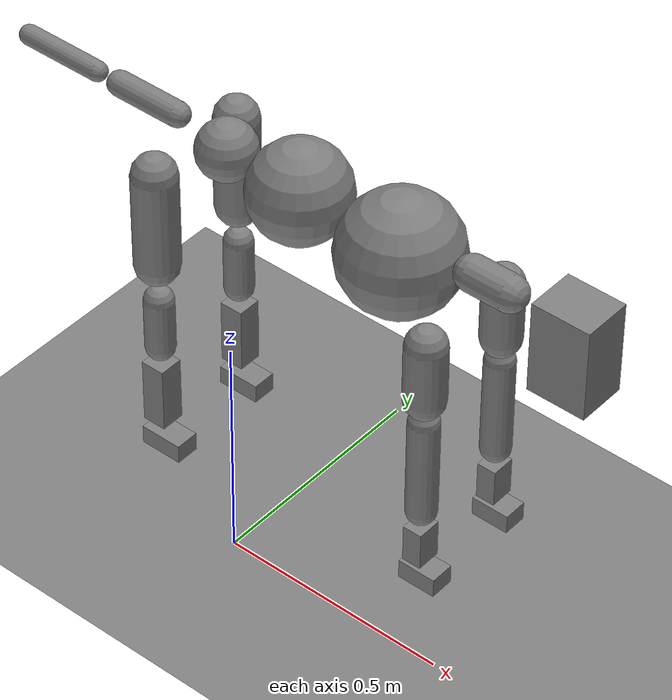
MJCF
<mujoco model="dog">
  <statistic extent="2" center="0 0 1"/>

  <option timestep="0.00555"/>

  <default>
    <motor ctrlrange="-1 1" ctrllimited="true"/>
    <default class="body">
      <geom type="capsule" condim="1" friction="1.0 0.05 0.05" solimp=".9 .99 .003" solref=".015 1"/>
      <joint type="hinge" damping="0.1" stiffness="5" armature=".007" limited="true" solimplimit="0 .99 .01"/>
      <site size=".04" group="3"/>
      <default class="force-torque">
        <site type="box" size=".01 .01 .02" rgba="1 0 0 1" />
      </default>
      <default class="touch">
        <site type="capsule" rgba="0 0 1 .3"/>
      </default>
    </default>
  </default>

  <worldbody>
    <geom name="floor" type="plane" conaffinity="1" size="100 100 .2" />
    <body name="pelvis" pos="0 0 1" childclass="body">
      <freejoint name="root"/>
      <site name="root" class="force-torque"/>
      <geom name="pelvis" type="sphere" pos="0 0 -0.02" size=".06" mass="3"/>
      <site name="pelvis" class="touch" type="sphere" pos="0 0 -0.02" size="0.061"/>

      <body name="waist" pos="0 0 0">
        <joint name="spine0_x" pos="0 0 0" axis="1 0 0" range="-60 60" stiffness="1000" damping="100" armature=".02"/>
        <joint name="spine0_y" pos="0 0 0" axis="0 1 0" range="-60 60" stiffness="1000" damping="100" armature=".02"/>
        <joint name="spine0_z" pos="0 0 0" axis="0 0 1" range="-30 30" stiffness="1000" damping="100" armature=".02"/>
        <geom name="waist" type="sphere" pos="0.17 0 -0.025" size="0.1" mass="5"/>
        <site name="waist" class="touch" type="sphere" pos="0.17 0 -0.025" size="0.11"/>

        <body name="torso" pos="0.237500 0 0">
          <light name="top" pos="0 0 2" mode="trackcom"/>
          <camera name="back" pos="-3 0 1" xyaxes="0 -1 0 1 0 2" mode="trackcom"/>
          <camera name="side" pos="0 -3 1" xyaxes="1 0 0 0 1 2" mode="trackcom"/>
          <joint name="spine1_x" pos="0 0 0" axis="1 0 0" range="-60 60" stiffness="1000" damping="100" armature=".02"/>
          <joint name="spine1_y" pos="0 0 0" axis="0 1 0" range="-60 90" stiffness="1000" damping="100" armature=".02"/>
          <joint name="spine1_z" pos="0 0 0" axis="0 0 1" range="-50 50" stiffness="1000" damping="100" armature=".02"/>
          <geom name="torso" type="sphere" pos="0.16 0 -0.04" size="0.12" mass="6"/>
          <site name="spine1" class="touch" type="sphere" pos="0.17 0 -0.04" size="0.121"/>

          <body name="neck" pos="0.28135 0 0">
            <joint name="neck_x" pos="0 0 0" axis="1 0 0" range="-60 60" stiffness="100" damping="10" armature=".01"/>
            <joint name="neck_y" pos="0 0 0" axis="0 1 0" range="-90 90" stiffness="100" damping="10" armature=".01"/>
            <joint name="neck_z" pos="0 0 0" axis="0 0 1" range="-50 50" stiffness="100" damping="10" armature=".01"/>
            <geom name="neck" type="capsule" pos="0.075 0 0" euler="0 -90 0" size="0.035 0.04" mass="1"/>
            <site name="neck" class="touch" type="sphere" pos="0.12 0 0" size="0.111"/>

            <body name="head" pos="0.175 0 0">
              <joint name="head_x" pos="0 0 0" axis="1 0 0" range="-60 60" stiffness="100" damping="10" armature=".01"/>
              <joint name="head_y" pos="0 0 0" axis="0 1 0" range="-60 60" stiffness="100" damping="10" armature=".01"/>
              <joint name="head_z" pos="0 0 0" axis="0 0 1" range="-50 50" stiffness="100" damping="10" armature=".01"/>
              <geom name="head" type="box" pos="0.08 0 -0.04" size="0.06 0.05 0.095" mass="1.5"/>
              <site name="head" class="touch" type="box" pos="0.08 0 -0.04" size="0.061 0.051 0.096"/>
              <camera name="egocentric" pos=".103 0 0" euler="0 0 -90"/>
            </body>
          </body>

          <body name="left_shoulder" pos="0.304074 -0.106071 -0.109983">
            <joint name="left_shoulder_x" pos="0 0 0" axis="1 0 0" range="-60 60" stiffness="500" damping="50" armature=".02"/>
            <joint name="left_shoulder_y" pos="0 0 0" axis="0 1 0" range="-60 90" stiffness="500" damping="50" armature=".02"/>
            <joint name="left_shoulder_z" pos="0 0 0" axis="0 0 1" range="-50 50" stiffness="500" damping="50" armature=".02"/>
            <geom name="left_shoulder" type="capsule" pos="0 0 -0.05" size="0.04 0.06" mass="1.5"/>
            <site name="left_shoulder" class="touch" type="capsule" pos="0 0 -0.05" size="0.041 0.061"/>

            <body name="left_forearm" pos="0 0 -0.19">
              <joint name="left_forearm" pos="0 0 0" axis="0 1 0" range="-160 0" stiffness="400" damping="40" armature=".02"/>
              <geom name="left_forearm" type="capsule" pos="0 0 -0.08" size="0.03 0.105" mass="1"/>
              <site name="left_forearm" class="touch" type="capsule" pos="0 0 -0.08" size="0.031 0.106"/>

              <body name="left_hand" pos="0 0 -0.222500">
                <joint name="left_hand_x" pos="0 0 0" axis="1 0 0" range="-60 60" stiffness="300" damping="30" armature=".01"/>
                <joint name="left_hand_y" pos="0 0 0" axis="0 1 0" range="-60 60" stiffness="300" damping="30" armature=".01"/>
                <joint name="left_hand_z" pos="0 0 0" axis="0 0 1" range="-60 60" stiffness="300" damping="30" armature=".01"/>
                <geom name="left_hand" type="box" pos="0 0 -0.04" size="0.02 0.025 0.04" mass="0.5"/>
                <site name="left_hand" class="touch" type="box" pos="0 0 -0.04" size="0.021 0.026 0.041"/>

                <body name="left_finger" pos="0 0 -0.09">
                  <joint name="left_finger_x" pos="0 0 0" axis="1 0 0" range="-60 60" stiffness="200" damping="20" armature=".01"/>
                  <joint name="left_finger_y" pos="0 0 0" axis="0 1 0" range="-60 60" stiffness="200" damping="20" armature=".01"/>
                  <joint name="left_finger_z" pos="0 0 0" axis="0 0 1" range="-60 60" stiffness="200" damping="20" armature=".01"/>
                  <geom name="left_finger" type="box" pos="0.012 0 -0.02" size="0.04 0.025 0.02" mass="0.5"/>
                  <site name="left_finger" class="touch" type="box" pos="0.012 0 -0.02" size="0.041 0.026 0.021"/>
                </body>
              </body>
            </body>
          </body>

          <body name="right_shoulder" pos="0.304074 0.106071 -0.109983">
            <joint name="right_shoulder_x" pos="0 0 0" axis="1 0 0" range="-60 60" stiffness="600" damping="60" armature=".02"/>
            <joint name="right_shoulder_y" pos="0 0 0" axis="0 1 0" range="-60 90" stiffness="600" damping="60" armature=".02"/>
            <joint name="right_shoulder_z" pos="0 0 0" axis="0 0 1" range="-50 50" stiffness="600" damping="60" armature=".02"/>
            <geom name="right_shoulder" type="capsule" pos="0 0 -0.05" size="0.04 0.06" mass="1.5"/>
            <site name="right_shoulder" class="touch" type="capsule" pos="0 0 -0.05" size="0.041 0.061"/>

            <body name="right_forearm" pos="0 0 -0.19">
              <joint name="right_forearm" pos="0 0 0" axis="0 1 0" range="-180 0" stiffness="400" damping="40" armature=".02"/>
              <geom name="right_forearm" type="capsule" pos="0 0 -0.08" size="0.03 0.105" mass="1"/>
              <site name="right_forearm" class="touch" type="capsule" pos="0 0 -0.08" size="0.031 0.106"/>

              <body name="right_hand" pos="0 0 -0.222500">
                <joint name="right_hand_x" pos="0 0 0" axis="1 0 0" range="-60 60" stiffness="300" damping="30" armature=".02"/>
                <joint name="right_hand_y" pos="0 0 0" axis="0 1 0" range="-60 60" stiffness="300" damping="30" armature=".02"/>
                <joint name="right_hand_z" pos="0 0 0" axis="0 0 1" range="-60 60" stiffness="300" damping="30" armature=".02"/>
                <geom name="right_hand" type="box" pos="0 0 -0.04" size="0.02 0.025 0.04" mass="0.5"/>
                <site name="right_hand" class="touch" type="box" pos="0 0 -0.04" size="0.021 0.026 0.041"/>

                <body name="right_finger" pos="0 0 -0.09">
                  <joint name="right_finger_x" pos="0 0 0" axis="1 0 0" range="-60 60" stiffness="200" damping="20" armature=".01"/>
                  <joint name="right_finger_y" pos="0 0 0" axis="0 1 0" range="-60 60" stiffness="200" damping="20" armature=".01"/>
                  <joint name="right_finger_z" pos="0 0 0" axis="0 0 1" range="-60 60" stiffness="200" damping="20" armature=".01"/>
                  <geom name="right_finger" type="box" pos="0.012 0 -0.02" size="0.04 0.025 0.02" mass="0.5"/>
                  <site name="right_finger" class="touch" type="box" pos="0.012 0 -0.02" size="0.041 0.026 0.021"/>
                </body>
              </body>
            </body>
          </body>
        </body>
      </body>

      <body name="left_upper_leg" pos="-0.074803 -0.109860 -0.095825">
        <joint name="left_upper_leg_x" pos="0 0 0" axis="1 0 0" range="-120 60" stiffness="700" damping="70" armature=".02"/>
        <joint name="left_upper_leg_y" pos="0 0 0" axis="0 1 0" range="-90 90" stiffness="700" damping="70" armature=".02"/>
        <joint name="left_upper_leg_z" pos="0 0 0" axis="0 0 1" range="-50 50" stiffness="700" damping="70" armature=".02"/>
        <geom name="left_upper_leg" type="capsule" pos="0 0 -0.055" size="0.045 0.1" mass="1.5"/>
        <site name="left_upper_leg" class="touch" type="capsule" pos="0 0 -0.055" size="0.046 0.101"/>

        <body name="left_leg" pos="0 0 -0.2">
          <joint name="left_leg" pos="0 0 0" axis="0 1 0" range="-30 180" stiffness="500" damping="50" armature=".02"/>
          <geom name="left_leg" type="capsule" pos="0 0 -0.1" size="0.03 0.055" mass="1"/>
          <site name="left_leg" class="touch" type="capsule" pos="0 0 -0.1" size="0.031 0.056"/>

          <body name="left_foot" pos="0 0 -0.225">
            <joint name="left_foot_x" pos="0 0 0" axis="1 0 0" range="-60 60" stiffness="400" damping="40" armature=".02"/>
            <joint name="left_foot_y" pos="0 0 0" axis="0 1 0" range="-90 60" stiffness="400" damping="40" armature=".02"/>
            <joint name="left_foot_z" pos="0 0 0" axis="0 0 1" range="-60 60" stiffness="400" damping="40" armature=".02"/>
            <geom name="left_foot" type="box" pos="0 0 -0.04" size="0.025 0.025 0.07" mass="0.5"/>
            <site name="left_foot" class="touch" type="box" pos="0 0 -0.03" size="0.026 0.026 0.101"/>

            <body name="left_toe" pos="0 0 -0.135">
              <joint name="left_toe_x" pos="0 0 0" axis="1 0 0" range="-60 60" stiffness="200" damping="20" armature=".01"/>
              <joint name="left_toe_y" pos="0 0 0" axis="0 1 0" range="-60 60" stiffness="200" damping="20" armature=".01"/>
              <joint name="left_toe_z" pos="0 0 0" axis="0 0 1" range="-60 60" stiffness="200" damping="20" armature=".01"/>
              <geom name="left_toe" type="box" pos="0.015 0 -0.02" size="0.045 0.025 0.02" mass="0.5"/>
              <site name="left_toe" class="touch" type="box" pos="0.015 0 -0.02" size="0.046 0.026 0.021"/>
            </body>
          </body>
        </body>
      </body>

      <body name="right_upper_leg" pos="-0.074803 0.109860 -0.095825">
        <joint name="right_upper_leg_x" pos="0 0 0" axis="1 0 0" range="-120 60" stiffness="700" damping="70" armature=".02"/>
        <joint name="right_upper_leg_y" pos="0 0 0" axis="0 1 0" range="-90 90" stiffness="700" damping="70" armature=".02"/>
        <joint name="right_upper_leg_z" pos="0 0 0" axis="0 0 1" range="-50 50" stiffness="700" damping="70" armature=".02"/>
        <geom name="right_upper_leg" type="capsule" pos="0 0 -0.055" size="0.045 0.1" mass="1.5"/>
        <site name="right_upper_leg" class="touch" type="capsule" pos="0 0 -0.055" size="0.046 0.101"/>

        <body name="right_leg" pos="0 0 -0.2">
          <joint name="right_leg" pos="0 0 0" axis="0 1 0" range="-30 180" stiffness="500" damping="50" armature=".02"/>
          <geom name="right_leg" type="capsule" pos="0 0 -0.1" size="0.03 0.055" mass="1"/>
          <site name="right_leg" class="touch" type="capsule" pos="0 0 -0.1" size="0.031 0.056"/>

          <body name="right_foot" pos="0 0 -0.225">
            <joint name="right_foot_x" pos="0 0 0" axis="1 0 0" range="-60 60" stiffness="400" damping="40" armature=".02"/>
            <joint name="right_foot_y" pos="0 0 0" axis="0 1 0" range="-90 60" stiffness="400" damping="40" armature=".02"/>
            <joint name="right_foot_z" pos="0 0 0" axis="0 0 1" range="-60 60" stiffness="400" damping="40" armature=".02"/>
            <geom name="right_foot" type="box" pos="0 0 -0.04" size="0.025 0.025 0.07" mass="0.5"/>
            <site name="right_foot" class="touch" type="box" pos="0 0 -0.03" size="0.026 0.026 0.101"/>

            <body name="right_toe" pos="0 0 -0.135">
              <joint name="right_toe_x" pos="0 0 0" axis="1 0 0" range="-60 60" stiffness="200" damping="20" armature=".01"/>
              <joint name="right_toe_y" pos="0 0 0" axis="0 1 0" range="-60 60" stiffness="200" damping="20" armature=".01"/>
              <joint name="right_toe_z" pos="0 0 0" axis="0 0 1" range="-60 60" stiffness="200" damping="20" armature=".01"/>
              <geom name="right_toe" type="box" pos="0.015 0 -0.02" size="0.045 0.025 0.02" mass="0.5"/>
              <site name="right_toe" class="touch" type="box" pos="0.015 0 -0.02" size="0.046 0.026 0.021"/>
            </body>
          </body>
        </body>
      </body>

      <body name="tail0" pos="-0.086 0 0">
        <joint name="tail0_x" pos="0 0 0" axis="1 0 0" range="-60 60" stiffness="300" damping="30" armature=".01"/>
        <joint name="tail0_y" pos="0 0 0" axis="0 1 0" range="-90 90" stiffness="300" damping="30" armature=".01"/>
        <joint name="tail0_z" pos="0 0 0" axis="0 0 1" range="-50 50" stiffness="300" damping="30" armature=".01"/>
        <geom name="tail0" type="capsule" pos="-0.1 0 0" euler="0 90 0" size="0.025 0.07" mass="0.5"/>
        <site name="tail0" class="touch" type="capsule" pos="-0.1 0 0" size="0.026 0.071"/>

        <body name="tail1" pos="-0.2 0 0">
          <joint name="tail1_x" pos="0 0 0" axis="1 0 0" range="-60 60" stiffness="200" damping="20" armature=".01"/>
          <joint name="tail1_y" pos="0 0 0" axis="0 1 0" range="-60 90" stiffness="200" damping="20" armature=".01"/>
          <joint name="tail1_z" pos="0 0 0" axis="0 0 1" range="-50 50" stiffness="200" damping="20" armature=".01"/>
          <geom name="tail1" type="capsule" pos="-0.11 0 0" euler="0 90 0" size="0.02 0.085" mass="0.25"/>
          <site name="tail1" class="touch" type="capsule" pos="-0.11 0 0" size="0.021 0.086"/>
        </body>
      </body>
    </body>
  </worldbody>

  <actuator>
    <motor name="spine0_x"          gear="200" joint="spine0_x"/>
    <motor name="spine0_y"          gear="200" joint="spine0_y"/>
    <motor name="spine0_z"          gear="200" joint="spine0_z"/>
    <motor name="spine1_x"          gear="200" joint="spine1_x"/>
    <motor name="spine1_y"          gear="200" joint="spine1_y"/>
    <motor name="spine1_z"          gear="200" joint="spine1_z"/>
    <motor name="neck_x"            gear="50" joint="neck_x"/>
    <motor name="neck_y"            gear="50" joint="neck_y"/>
    <motor name="neck_z"            gear="50" joint="neck_z"/>
    <motor name="head_x"            gear="50"  joint="head_x"/>
    <motor name="head_y"            gear="50"  joint="head_y"/>
    <motor name="head_z"            gear="50"  joint="head_z"/>
    <motor name="left_shoulder_x"   gear="100" joint="left_shoulder_x"/>
    <motor name="left_shoulder_y"   gear="100" joint="left_shoulder_y"/>
    <motor name="left_shoulder_z"   gear="100" joint="left_shoulder_z"/>
    <motor name="left_forearm"      gear="70"  joint="left_forearm"/>
    <motor name="left_hand_x"       gear="50"  joint="left_hand_x"/>
    <motor name="left_hand_y"       gear="50"  joint="left_hand_y"/>
    <motor name="left_hand_z"       gear="50"  joint="left_hand_z"/>
    <motor name="left_finger_x"     gear="50"  joint="left_finger_x"/>
    <motor name="left_finger_y"     gear="50"  joint="left_finger_y"/>
    <motor name="left_finger_z"     gear="50"  joint="left_finger_z"/>
    <motor name="right_shoulder_x"  gear="100" joint="right_shoulder_x"/>
    <motor name="right_shoulder_y"  gear="100" joint="right_shoulder_y"/>
    <motor name="right_shoulder_z"  gear="100" joint="right_shoulder_z"/>
    <motor name="right_forearm"     gear="70"  joint="right_forearm"/>
    <motor name="right_hand_x"      gear="50"  joint="right_hand_x"/>
    <motor name="right_hand_y"      gear="50"  joint="right_hand_y"/>
    <motor name="right_hand_z"      gear="50"  joint="right_hand_z"/>
    <motor name="right_finger_x"    gear="50"  joint="right_finger_x"/>
    <motor name="right_finger_y"    gear="50"  joint="right_finger_y"/>
    <motor name="right_finger_z"    gear="50"  joint="right_finger_z"/>
    <motor name="left_upper_leg_x"  gear="200" joint="left_upper_leg_x"/>
    <motor name="left_upper_leg_y"  gear="200" joint="left_upper_leg_y"/>
    <motor name="left_upper_leg_z"  gear="200" joint="left_upper_leg_z"/>
    <motor name="left_leg"          gear="150"  joint="left_leg"/>
    <motor name="left_foot_x"       gear="100"  joint="left_foot_x"/>
    <motor name="left_foot_y"       gear="100"  joint="left_foot_y"/>
    <motor name="left_foot_z"       gear="100"  joint="left_foot_z"/>
    <motor name="left_toe_x"        gear="70"  joint="left_toe_x"/>
    <motor name="left_toe_y"        gear="70"  joint="left_toe_y"/>
    <motor name="left_toe_z"        gear="70"  joint="left_toe_z"/>
    <motor name="right_upper_leg_x" gear="200" joint="right_upper_leg_x"/>
    <motor name="right_upper_leg_y" gear="200" joint="right_upper_leg_y"/>
    <motor name="right_upper_leg_z" gear="200" joint="right_upper_leg_z"/>
    <motor name="right_leg"         gear="150"  joint="right_leg"/>
    <motor name="right_foot_x"      gear="100"  joint="right_foot_x"/>
    <motor name="right_foot_y"      gear="100"  joint="right_foot_y"/>
    <motor name="right_foot_z"      gear="100"  joint="right_foot_z"/>
    <motor name="right_toe_x"       gear="70"  joint="right_toe_x"/>
    <motor name="right_toe_y"       gear="70"  joint="right_toe_y"/>
    <motor name="right_toe_z"       gear="70"  joint="right_toe_z"/>
    <motor name="tail0_x"           gear="70"  joint="tail0_x"/>
    <motor name="tail0_y"           gear="70"  joint="tail0_y"/>
    <motor name="tail0_z"           gear="70"  joint="tail0_z"/>
    <motor name="tail1_x"           gear="70"  joint="tail1_x"/>
    <motor name="tail1_y"           gear="70"  joint="tail1_y"/>
    <motor name="tail1_z"           gear="70"  joint="tail1_z"/>
  </actuator>

  <sensor>
    <subtreelinvel name="pelvis_subtreelinvel" body="pelvis"/>
    <accelerometer name="root_accel"    site="root"/>
    <velocimeter name="root_vel"        site="root"/>
    <gyro name="root_gyro"              site="root"/>

    <touch name="pelvis_touch"          site="pelvis"/>
    <touch name="waist_touch"           site="waist"/>
    <touch name="spine1_touch"          site="spine1"/>
    <touch name="neck_touch"            site="neck"/>
    <touch name="head_touch"            site="head"/>
    <touch name="left_shoulder_touch"   site="left_shoulder"/>
    <touch name="left_forearm_touch"    site="left_forearm"/>
    <touch name="left_hand_touch"       site="left_hand"/>
    <touch name="left_finger_touch"     site="left_finger"/>
    <touch name="right_shoulder_touch"  site="right_shoulder"/>
    <touch name="right_forearm_touch"   site="right_forearm"/>
    <touch name="right_hand_touch"      site="right_hand"/>
    <touch name="right_finger_touch"    site="right_finger"/>
    <touch name="left_upper_leg_touch"  site="left_upper_leg"/>
    <touch name="left_leg_touch"        site="left_leg"/>
    <touch name="left_foot_touch"       site="left_foot"/>
    <touch name="left_toe_touch"        site="left_toe"/>
    <touch name="right_upper_leg_touch" site="right_upper_leg"/>
    <touch name="right_leg_touch"       site="right_leg"/>
    <touch name="right_foot_touch"      site="right_foot"/>
    <touch name="right_toe_touch"       site="right_toe"/>
    <touch name="tail0_touch"           site="tail0"/>
    <touch name="tail1_touch"           site="tail1"/>
  </sensor>
</mujoco>
